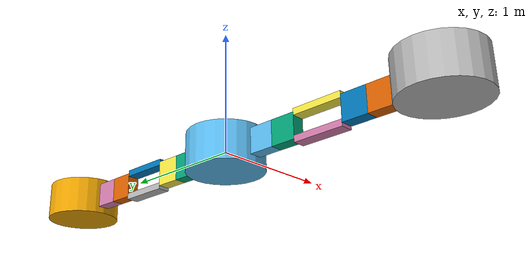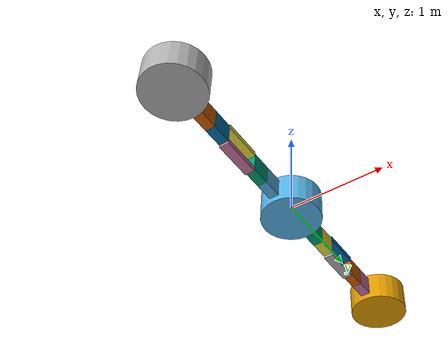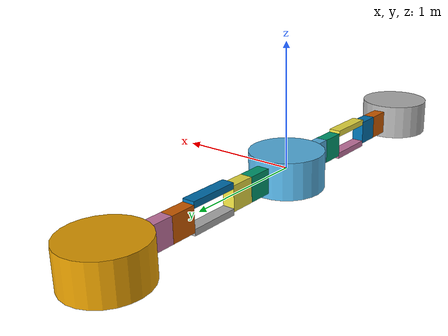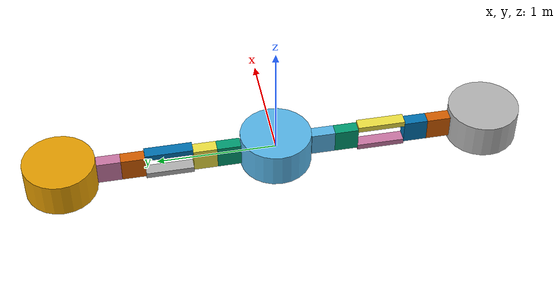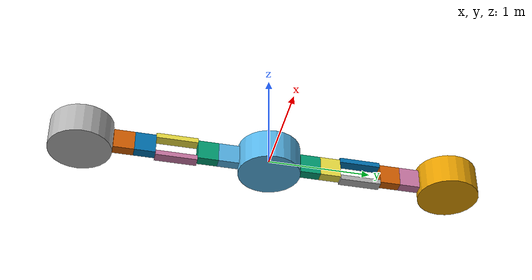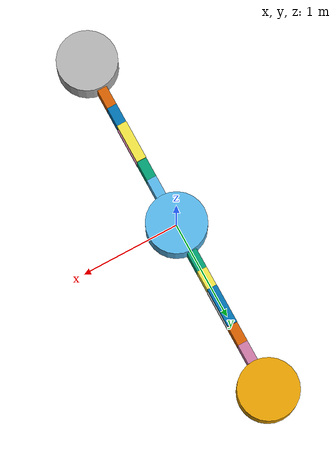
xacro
<?xml version="1.0"?>
<robot name="crx_v1" xmlns:xacro="http://ros.org/wiki/xacro">

  <xacro:include filename="$(find crx_description)/crx_v1/urdf/limb_L.urdf.xacro"/>
  <xacro:include filename="$(find crx_description)/crx_v1/urdf/limb_R.urdf.xacro"/>

  <link name="world"/>

  <link name="base_link">
      <visual>
        <origin xyz="0 0 0" rpy="0 0 0"/>
        <geometry>
          <cylinder radius="0.3" length="0.3"/>
        </geometry>
      </visual>
      <collision>
        <origin xyz="0 0 0" rpy="0 0 0"/>
        <geometry>
          <cylinder radius="0.3" length="0.3"/>
        </geometry>
      </collision>
    </link>

  <xacro:limb_L parent="base_link">
    <origin xyz="0 0.3 0" rpy="0 0 0"/>
  </xacro:limb_L>

  <xacro:limb_R parent="base_link">
    <origin xyz="0 -0.3 0" rpy="0 0 0"/>
  </xacro:limb_R>

  <joint name="world_to_base" type="fixed">
      <parent link="world"/>
      <child link="base_link"/>
  </joint>

</robot>

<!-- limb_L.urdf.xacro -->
<robot xmlns:xacro="http://ros.org/wiki/xacro">

<xacro:include filename="$(find crx_description)/crx_v1/urdf/limb.transmission.xacro"/>

<xacro:macro name="limb_L" params="parent *joint_origin">

    <link name="link_LA">
      <visual>
        <origin xyz="0 0.1 0" rpy="0 0 0"/>
        <geometry>
          <box size="0.1 0.2 0.2"/>
        </geometry>
      </visual>
      <collision>
        <origin xyz="0 0.1 0" rpy="0 0 0"/>
        <geometry>
          <box size="0.1 0.2 0.2"/>
        </geometry>
      </collision>
    </link>

    <link name="link_LB">
      <visual>
        <origin xyz="0 0.1 0" rpy="0 0 0"/>
        <geometry>
          <box size="0.1 0.2 0.2"/>
        </geometry>
      </visual>
      <collision>
        <origin xyz="0 0.1 0" rpy="0 0 0"/>
        <geometry>
          <box size="0.1 0.2 0.2"/>
        </geometry>
      </collision>
    </link>

    <link name="link_LC">
      <visual>
        <origin xyz="0 0.2 0" rpy="0 0 0"/>
        <geometry>
          <box size="0.1 0.4 0.05"/>
        </geometry>
      </visual>
      <collision>
        <origin xyz="0 0.2 0" rpy="0 0 0"/>
        <geometry>
          <box size="0.1 0.4 0.05"/>
        </geometry>
      </collision>
    </link>

    <link name="link_LD">
      <visual>
        <origin xyz="0 0.1 -0.1" rpy="0 0 0"/>
        <geometry>
          <box size="0.1 0.2 0.2"/>
        </geometry>
      </visual>
      <collision>
        <origin xyz="0 0.1 -0.1" rpy="0 0 0"/>
        <geometry>
          <box size="0.1 0.2 0.2"/>
        </geometry>
      </collision>
    </link>

    <link name="link_LE">
      <visual>
        <origin xyz="0 0.1 0" rpy="0 0 0"/>
        <geometry>
          <box size="0.1 0.2 0.2"/>
        </geometry>
      </visual>
      <collision>
        <origin xyz="0 0.1 0" rpy="0 0 0"/>
        <geometry>
          <box size="0.1 0.2 0.2"/>
        </geometry>
      </collision>
    </link>

    <link name="link_LF">
      <visual>
        <origin xyz="0 -0.2 0" rpy="0 0 0"/>
        <geometry>
          <box size="0.1 0.4 0.05"/>
        </geometry>
      </visual>
      <collision>
        <origin xyz="0 -0.2 0" rpy="0 0 0"/>
        <geometry>
          <box size="0.1 0.4 0.05"/>
        </geometry>
      </collision>
    </link>

    <link name="end_link_L">
      <visual>
        <origin xyz="0 0.3 0" rpy="0 0 0"/>
        <geometry>
          <cylinder radius="0.3" length="0.3"/>
        </geometry>
      </visual>
      <collision>
        <origin xyz="0 0.3 0" rpy="0 0 0"/>
        <geometry>
          <cylinder radius="0.3" length="0.3"/>
        </geometry>
      </collision>
    </link>

    <joint name="${parent}_to_link_LA" type="fixed">
      <parent link="${parent}"/>
      <child link="link_LA"/>
      <xacro:insert_block name="joint_origin"/>
    </joint>

    <joint name="link_LA_to_link_LB" type="revolute">
      <axis xyz="0 0 1"/>
      <limit lower="-1.0" upper="1.0" effort="100.0" velocity="3.14"/>
      <dynamics damping="0.1"/>
      <parent link="link_LA"/>
      <child link="link_LB"/>
      <origin xyz="0 0.2 0" rpy="0 0 0"/>
    </joint>
    <xacro:effort_trans joint="link_LA_to_link_LB"/>

    <joint name="link_LB_to_link_LC" type="revolute">
      <axis xyz="1 0 0"/>
      <limit lower="-1.0" upper="1.0" effort="100.0" velocity="3.14"/>
      <dynamics damping="0.1"/>
      <parent link="link_LB"/>
      <child link="link_LC"/>
      <origin xyz="0 0.2 0.1" rpy="0 0 0"/>
    </joint>
    <xacro:effort_trans joint="link_LB_to_link_LC"/>

    <joint name="link_LC_to_link_LD" type="continuous">
      <axis xyz="1 0 0"/>
      <parent link="link_LC"/>
      <child link="link_LD"/>
      <origin xyz="0 0.4 0" rpy="0 0 0"/>
    </joint>

    <joint name="link_LD_to_link_LE" type="revolute">
      <axis xyz="0 0 1"/>
      <limit lower="-1.0" upper="1.0" effort="100.0" velocity="3.14"/>
      <dynamics damping="0.1"/>
      <parent link="link_LD"/>
      <child link="link_LE"/>
      <origin xyz="0 0.2 -0.1" rpy="0 0 0"/>
    </joint>
    <xacro:effort_trans joint="link_LD_to_link_LE"/>

    <joint name="link_LD_to_link_LF" type="continuous">
      <axis xyz="1 0 0"/>
      <parent link="link_LD"/>
      <child link="link_LF"/>
      <origin xyz="0 0 -0.2" rpy="0 0 0"/>
    </joint>

    <joint name="link_LE_to_end_link_L" type="fixed">
      <parent link="link_LE"/>
      <child link="end_link_L"/>
      <origin xyz="0 0.2 0" rpy="0 0 0"/>
    </joint>

</xacro:macro>

</robot>

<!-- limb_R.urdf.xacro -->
<robot xmlns:xacro="http://ros.org/wiki/xacro">

<xacro:include filename="$(find crx_description)/crx_v1/urdf/limb.transmission.xacro"/>

<xacro:macro name="limb_R" params="parent *joint_origin">

    <link name="link_RA">
      <visual>
        <origin xyz="0 -0.1 0" rpy="0 0 0"/>
        <geometry>
          <box size="0.1 0.2 0.2"/>
        </geometry>
      </visual>
      <collision>
        <origin xyz="0 -0.1 0" rpy="0 0 0"/>
        <geometry>
          <box size="0.1 0.2 0.2"/>
        </geometry>
      </collision>
    </link>

    <link name="link_RB">
      <visual>
        <origin xyz="0 -0.1 0" rpy="0 0 0"/>
        <geometry>
          <box size="0.1 0.2 0.2"/>
        </geometry>
      </visual>
      <collision>
        <origin xyz="0 -0.1 0" rpy="0 0 0"/>
        <geometry>
          <box size="0.1 0.2 0.2"/>
        </geometry>
      </collision>
    </link>

    <link name="link_RC">
      <visual>
        <origin xyz="0 -0.2 0" rpy="0 0 0"/>
        <geometry>
          <box size="0.1 0.4 0.05"/>
        </geometry>
      </visual>
      <collision>
        <origin xyz="0 -0.2 0" rpy="0 0 0"/>
        <geometry>
          <box size="0.1 0.4 0.05"/>
        </geometry>
      </collision>
    </link>

    <link name="link_RD">
      <visual>
        <origin xyz="0 -0.1 -0.1" rpy="0 0 0"/>
        <geometry>
          <box size="0.1 0.2 0.2"/>
        </geometry>
      </visual>
      <collision>
        <origin xyz="0 -0.1 -0.1" rpy="0 0 0"/>
        <geometry>
          <box size="0.1 0.2 0.2"/>
        </geometry>
      </collision>
    </link>

    <link name="link_RE">
      <visual>
        <origin xyz="0 -0.1 0" rpy="0 0 0"/>
        <geometry>
          <box size="0.1 0.2 0.2"/>
        </geometry>
      </visual>
      <collision>
        <origin xyz="0 -0.1 0" rpy="0 0 0"/>
        <geometry>
          <box size="0.1 0.2 0.2"/>
        </geometry>
      </collision>
    </link>

    <link name="link_RF">
      <visual>
        <origin xyz="0 0.2 0" rpy="0 0 0"/>
        <geometry>
          <box size="0.1 0.4 0.05"/>
        </geometry>
      </visual>
      <collision>
        <origin xyz="0 0.2 0" rpy="0 0 0"/>
        <geometry>
          <box size="0.1 0.4 0.05"/>
        </geometry>
      </collision>
    </link>

    <link name="end_link_R">
      <visual>
        <origin xyz="0 -0.3 0" rpy="0 0 0"/>
        <geometry>
          <cylinder radius="0.3" length="0.3"/>
        </geometry>
      </visual>
      <collision>
        <origin xyz="0 -0.3 0" rpy="0 0 0"/>
        <geometry>
          <cylinder radius="0.3" length="0.3"/>
        </geometry>
      </collision>
    </link>

    <joint name="${parent}_to_link_RA" type="fixed">
      <parent link="${parent}"/>
      <child link="link_RA"/>
      <xacro:insert_block name="joint_origin"/>
    </joint>

    <joint name="link_RA_to_link_RB" type="revolute">
      <axis xyz="0 0 1"/>
      <limit lower="-1.0" upper="1.0" effort="100.0" velocity="3.14"/>
      <dynamics damping="0.1"/>
      <parent link="link_RA"/>
      <child link="link_RB"/>
      <origin xyz="0 -0.2 0" rpy="0 0 0"/>
    </joint>
    <xacro:effort_trans joint="link_RA_to_link_RB"/>

    <joint name="link_RB_to_link_RC" type="revolute">
      <axis xyz="1 0 0"/>
      <limit lower="-1.0" upper="1.0" effort="100.0" velocity="3.14"/>
      <dynamics damping="0.1"/>
      <parent link="link_RB"/>
      <child link="link_RC"/>
      <origin xyz="0 -0.2 0.1" rpy="0 0 0"/>
    </joint>
    <xacro:effort_trans joint="link_RB_to_link_RC"/>

    <joint name="link_RC_to_link_RD" type="continuous">
      <axis xyz="1 0 0"/>
      <parent link="link_RC"/>
      <child link="link_RD"/>
      <origin xyz="0 -0.4 0" rpy="0 0 0"/>
    </joint>

    <joint name="link_RD_to_link_RE" type="revolute">
      <axis xyz="0 0 1"/>
      <limit lower="-1.0" upper="1.0" effort="100.0" velocity="3.14"/>
      <dynamics damping="0.1"/>
      <parent link="link_RD"/>
      <child link="link_RE"/>
      <origin xyz="0 -0.2 -0.1" rpy="0 0 0"/>
    </joint>
    <xacro:effort_trans joint="link_RD_to_link_RE"/>

    <joint name="link_RD_to_link_RF" type="continuous">
      <axis xyz="1 0 0"/>
      <parent link="link_RD"/>
      <child link="link_RF"/>
      <origin xyz="0 0 -0.2" rpy="0 0 0"/>
    </joint>

    <joint name="link_RE_to_end_link_R" type="fixed">
      <parent link="link_RE"/>
      <child link="end_link_R"/>
      <origin xyz="0 -0.2 0" rpy="0 0 0"/>
    </joint>

</xacro:macro>

</robot>
